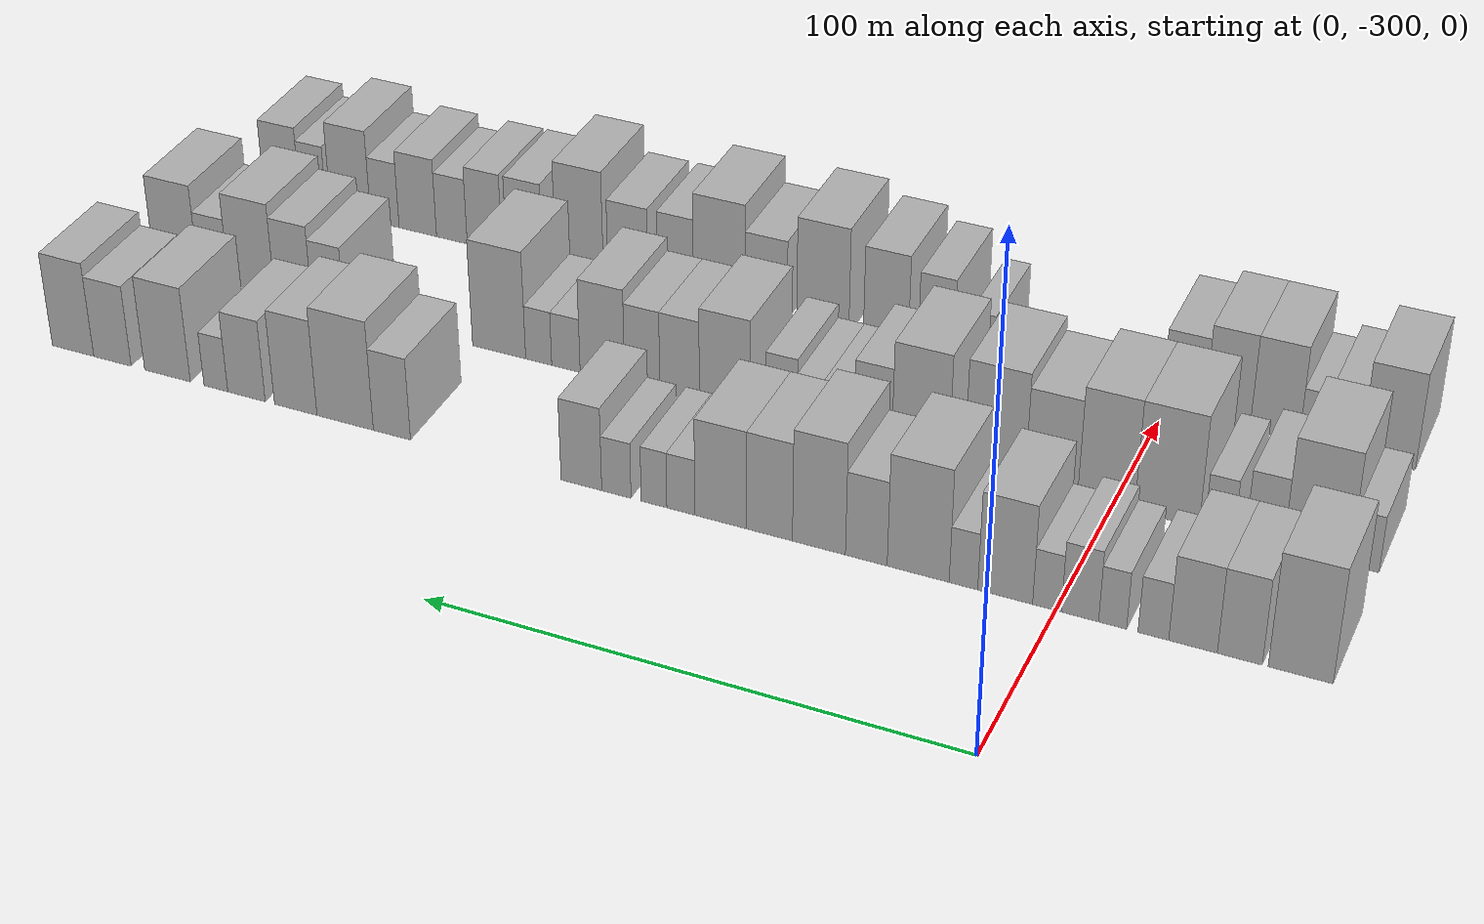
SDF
<sdf version="1.6">
 <world name="default">
  <model name="building_1">
   <static>1</static>
   <pose>50.0000 -342.4957 0 0.000000 0.000000 0.000000</pose>
   <link name="link">
    <pose>0 0 12.00 0 0 0</pose>
    <collision name="collision"><geometry><box><size>20.0000 11.0086 24.0000</size></box></geometry></collision>
    <visual name="visual">
     <cast_shadows>0</cast_shadows>
     <geometry><box><size>20.0000 11.0086 24.0000</size></box></geometry>
     <material>
      <script>
       <uri>model://HANNAS_wall/materials/scripts</uri>
       <uri>model://HANNAS_wall/materials/textures</uri>
       <name>vrc/HANNAS_wall</name>
      </script>
     </material>
    </visual>
   </link>
  </model>
  <model name="building_2">
   <static>1</static>
   <pose>50.0000 -332.1267 0 0.000000 0.000000 0.000000</pose>
   <link name="link">
    <pose>0 0 9.00 0 0 0</pose>
    <collision name="collision"><geometry><box><size>20.0000 7.7294 18.0000</size></box></geometry></collision>
    <visual name="visual">
     <cast_shadows>0</cast_shadows>
     <geometry><box><size>20.0000 7.7294 18.0000</size></box></geometry>
     <material>
      <script>
       <uri>model://HANNAS_wall/materials/scripts</uri>
       <uri>model://HANNAS_wall/materials/textures</uri>
       <name>vrc/HANNAS_wall</name>
      </script>
     </material>
    </visual>
   </link>
  </model>
  <model name="building_3">
   <static>1</static>
   <pose>50.0000 -324.0537 0 0.000000 0.000000 0.000000</pose>
   <link name="link">
    <pose>0 0 9.00 0 0 0</pose>
    <collision name="collision"><geometry><box><size>20.0000 8.4165 18.0000</size></box></geometry></collision>
    <visual name="visual">
     <cast_shadows>0</cast_shadows>
     <geometry><box><size>20.0000 8.4165 18.0000</size></box></geometry>
     <material>
      <script>
       <uri>model://HANNAS_wall/materials/scripts</uri>
       <uri>model://HANNAS_wall/materials/textures</uri>
       <name>vrc/HANNAS_wall</name>
      </script>
     </material>
    </visual>
   </link>
  </model>
  <model name="building_4">
   <static>1</static>
   <pose>50.0000 -317.1631 0 0.000000 0.000000 0.000000</pose>
   <link name="link">
    <pose>0 0 6.00 0 0 0</pose>
    <collision name="collision"><geometry><box><size>20.0000 5.3648 12.0000</size></box></geometry></collision>
    <visual name="visual">
     <cast_shadows>0</cast_shadows>
     <geometry><box><size>20.0000 5.3648 12.0000</size></box></geometry>
     <material>
      <script>
       <uri>model://HANNAS_wall/materials/scripts</uri>
       <uri>model://HANNAS_wall/materials/textures</uri>
       <name>vrc/HANNAS_wall</name>
      </script>
     </material>
    </visual>
   </link>
  </model>
  <model name="building_5">
   <static>1</static>
   <pose>50.0000 -310.0044 0 0.000000 0.000000 0.000000</pose>
   <link name="link">
    <pose>0 0 6.00 0 0 0</pose>
    <collision name="collision"><geometry><box><size>20.0000 4.9525 12.0000</size></box></geometry></collision>
    <visual name="visual">
     <cast_shadows>0</cast_shadows>
     <geometry><box><size>20.0000 4.9525 12.0000</size></box></geometry>
     <material>
      <script>
       <uri>model://HANNAS_wall/materials/scripts</uri>
       <uri>model://HANNAS_wall/materials/textures</uri>
       <name>vrc/HANNAS_wall</name>
      </script>
     </material>
    </visual>
   </link>
  </model>
  <model name="building_6">
   <static>1</static>
   <pose>50.0000 -304.2239 0 0.000000 0.000000 0.000000</pose>
   <link name="link">
    <pose>0 0 7.50 0 0 0</pose>
    <collision name="collision"><geometry><box><size>20.0000 6.6086 15.0000</size></box></geometry></collision>
    <visual name="visual">
     <cast_shadows>0</cast_shadows>
     <geometry><box><size>20.0000 6.6086 15.0000</size></box></geometry>
     <material>
      <script>
       <uri>model://HANNAS_wall/materials/scripts</uri>
       <uri>model://HANNAS_wall/materials/textures</uri>
       <name>vrc/HANNAS_wall</name>
      </script>
     </material>
    </visual>
   </link>
  </model>
  <model name="building_7">
   <static>1</static>
   <pose>50.0000 -298.3457 0 0.000000 0.000000 0.000000</pose>
   <link name="link">
    <pose>0 0 6.00 0 0 0</pose>
    <collision name="collision"><geometry><box><size>20.0000 5.1477 12.0000</size></box></geometry></collision>
    <visual name="visual">
     <cast_shadows>0</cast_shadows>
     <geometry><box><size>20.0000 5.1477 12.0000</size></box></geometry>
     <material>
      <script>
       <uri>model://HANNAS_wall/materials/scripts</uri>
       <uri>model://HANNAS_wall/materials/textures</uri>
       <name>vrc/HANNAS_wall</name>
      </script>
     </material>
    </visual>
   </link>
  </model>
  <model name="building_8">
   <static>1</static>
   <pose>50.0000 -290.8053 0 0.000000 0.000000 0.000000</pose>
   <link name="link">
    <pose>0 0 10.50 0 0 0</pose>
    <collision name="collision"><geometry><box><size>20.0000 9.9332 21.0000</size></box></geometry></collision>
    <visual name="visual">
     <cast_shadows>0</cast_shadows>
     <geometry><box><size>20.0000 9.9332 21.0000</size></box></geometry>
     <material>
      <script>
       <uri>model://HANNAS_wall/materials/scripts</uri>
       <uri>model://HANNAS_wall/materials/textures</uri>
       <name>vrc/HANNAS_wall</name>
      </script>
     </material>
    </visual>
   </link>
  </model>
  <model name="building_9">
   <static>1</static>
   <pose>50.0000 -283.2354 0 0.000000 0.000000 0.000000</pose>
   <link name="link">
    <pose>0 0 6.00 0 0 0</pose>
    <collision name="collision"><geometry><box><size>20.0000 5.2066 12.0000</size></box></geometry></collision>
    <visual name="visual">
     <cast_shadows>0</cast_shadows>
     <geometry><box><size>20.0000 5.2066 12.0000</size></box></geometry>
     <material>
      <script>
       <uri>model://HANNAS_wall/materials/scripts</uri>
       <uri>model://HANNAS_wall/materials/textures</uri>
       <name>vrc/HANNAS_wall</name>
      </script>
     </material>
    </visual>
   </link>
  </model>
  <model name="building_10">
   <static>1</static>
   <pose>50.0000 -274.9142 0 0.000000 0.000000 0.000000</pose>
   <link name="link">
    <pose>0 0 12.00 0 0 0</pose>
    <collision name="collision"><geometry><box><size>20.0000 11.4358 24.0000</size></box></geometry></collision>
    <visual name="visual">
     <cast_shadows>0</cast_shadows>
     <geometry><box><size>20.0000 11.4358 24.0000</size></box></geometry>
     <material>
      <script>
       <uri>model://HANNAS_wall/materials/scripts</uri>
       <uri>model://HANNAS_wall/materials/textures</uri>
       <name>vrc/HANNAS_wall</name>
      </script>
     </material>
    </visual>
   </link>
  </model>
  <model name="building_11">
   <static>1</static>
   <pose>50.0000 -265.3020 0 0.000000 0.000000 0.000000</pose>
   <link name="link">
    <pose>0 0 9.00 0 0 0</pose>
    <collision name="collision"><geometry><box><size>20.0000 7.7885 18.0000</size></box></geometry></collision>
    <visual name="visual">
     <cast_shadows>0</cast_shadows>
     <geometry><box><size>20.0000 7.7885 18.0000</size></box></geometry>
     <material>
      <script>
       <uri>model://HANNAS_wall/materials/scripts</uri>
       <uri>model://HANNAS_wall/materials/textures</uri>
       <name>vrc/HANNAS_wall</name>
      </script>
     </material>
    </visual>
   </link>
  </model>
  <model name="building_12">
   <static>1</static>
   <pose>50.0000 -256.4135 0 0.000000 0.000000 0.000000</pose>
   <link name="link">
    <pose>0 0 12.00 0 0 0</pose>
    <collision name="collision"><geometry><box><size>20.0000 9.9885 24.0000</size></box></geometry></collision>
    <visual name="visual">
     <cast_shadows>0</cast_shadows>
     <geometry><box><size>20.0000 9.9885 24.0000</size></box></geometry>
     <material>
      <script>
       <uri>model://HANNAS_wall/materials/scripts</uri>
       <uri>model://HANNAS_wall/materials/textures</uri>
       <name>vrc/HANNAS_wall</name>
      </script>
     </material>
    </visual>
   </link>
  </model>
  <model name="building_13">
   <static>1</static>
   <pose>50.0000 -247.0191 0 0.000000 0.000000 0.000000</pose>
   <link name="link">
    <pose>0 0 10.50 0 0 0</pose>
    <collision name="collision"><geometry><box><size>20.0000 8.8004 21.0000</size></box></geometry></collision>
    <visual name="visual">
     <cast_shadows>0</cast_shadows>
     <geometry><box><size>20.0000 8.8004 21.0000</size></box></geometry>
     <material>
      <script>
       <uri>model://HANNAS_wall/materials/scripts</uri>
       <uri>model://HANNAS_wall/materials/textures</uri>
       <name>vrc/HANNAS_wall</name>
      </script>
     </material>
    </visual>
   </link>
  </model>
  <model name="building_14">
   <static>1</static>
   <pose>50.0000 -237.6495 0 0.000000 0.000000 0.000000</pose>
   <link name="link">
    <pose>0 0 10.50 0 0 0</pose>
    <collision name="collision"><geometry><box><size>20.0000 9.9387 21.0000</size></box></geometry></collision>
    <visual name="visual">
     <cast_shadows>0</cast_shadows>
     <geometry><box><size>20.0000 9.9387 21.0000</size></box></geometry>
     <material>
      <script>
       <uri>model://HANNAS_wall/materials/scripts</uri>
       <uri>model://HANNAS_wall/materials/textures</uri>
       <name>vrc/HANNAS_wall</name>
      </script>
     </material>
    </visual>
   </link>
  </model>
  <model name="building_15">
   <static>1</static>
   <pose>50.0000 -229.9502 0 0.000000 0.000000 0.000000</pose>
   <link name="link">
    <pose>0 0 6.00 0 0 0</pose>
    <collision name="collision"><geometry><box><size>20.0000 5.4601 12.0000</size></box></geometry></collision>
    <visual name="visual">
     <cast_shadows>0</cast_shadows>
     <geometry><box><size>20.0000 5.4601 12.0000</size></box></geometry>
     <material>
      <script>
       <uri>model://HANNAS_wall/materials/scripts</uri>
       <uri>model://HANNAS_wall/materials/textures</uri>
       <name>vrc/HANNAS_wall</name>
      </script>
     </material>
    </visual>
   </link>
  </model>
  <model name="building_16">
   <static>1</static>
   <pose>50.0000 -224.7067 0 0.000000 0.000000 0.000000</pose>
   <link name="link">
    <pose>0 0 6.00 0 0 0</pose>
    <collision name="collision"><geometry><box><size>20.0000 5.0269 12.0000</size></box></geometry></collision>
    <visual name="visual">
     <cast_shadows>0</cast_shadows>
     <geometry><box><size>20.0000 5.0269 12.0000</size></box></geometry>
     <material>
      <script>
       <uri>model://HANNAS_wall/materials/scripts</uri>
       <uri>model://HANNAS_wall/materials/textures</uri>
       <name>vrc/HANNAS_wall</name>
      </script>
     </material>
    </visual>
   </link>
  </model>
  <model name="building_17">
   <static>1</static>
   <pose>50.0000 -217.2980 0 0.000000 0.000000 0.000000</pose>
   <link name="link">
    <pose>0 0 6.00 0 0 0</pose>
    <collision name="collision"><geometry><box><size>20.0000 5.7905 12.0000</size></box></geometry></collision>
    <visual name="visual">
     <cast_shadows>0</cast_shadows>
     <geometry><box><size>20.0000 5.7905 12.0000</size></box></geometry>
     <material>
      <script>
       <uri>model://HANNAS_wall/materials/scripts</uri>
       <uri>model://HANNAS_wall/materials/textures</uri>
       <name>vrc/HANNAS_wall</name>
      </script>
     </material>
    </visual>
   </link>
  </model>
  <model name="building_18">
   <static>1</static>
   <pose>50.0000 -210.3481 0 0.000000 0.000000 0.000000</pose>
   <link name="link">
    <pose>0 0 9.00 0 0 0</pose>
    <collision name="collision"><geometry><box><size>20.0000 8.1093 18.0000</size></box></geometry></collision>
    <visual name="visual">
     <cast_shadows>0</cast_shadows>
     <geometry><box><size>20.0000 8.1093 18.0000</size></box></geometry>
     <material>
      <script>
       <uri>model://HANNAS_wall/materials/scripts</uri>
       <uri>model://HANNAS_wall/materials/textures</uri>
       <name>vrc/HANNAS_wall</name>
      </script>
     </material>
    </visual>
   </link>
  </model>
  <model name="building_19">
   <static>1</static>
   <pose>50.0000 -171.6649 0 0.000000 0.000000 0.000000</pose>
   <link name="link">
    <pose>0 0 9.00 0 0 0</pose>
    <collision name="collision"><geometry><box><size>20.0000 7.7523 18.0000</size></box></geometry></collision>
    <visual name="visual">
     <cast_shadows>0</cast_shadows>
     <geometry><box><size>20.0000 7.7523 18.0000</size></box></geometry>
     <material>
      <script>
       <uri>model://HANNAS_wall/materials/scripts</uri>
       <uri>model://HANNAS_wall/materials/textures</uri>
       <name>vrc/HANNAS_wall</name>
      </script>
     </material>
    </visual>
   </link>
  </model>
  <model name="building_20">
   <static>1</static>
   <pose>50.0000 -161.8303 0 0.000000 0.000000 0.000000</pose>
   <link name="link">
    <pose>0 0 12.00 0 0 0</pose>
    <collision name="collision"><geometry><box><size>20.0000 11.9169 24.0000</size></box></geometry></collision>
    <visual name="visual">
     <cast_shadows>0</cast_shadows>
     <geometry><box><size>20.0000 11.9169 24.0000</size></box></geometry>
     <material>
      <script>
       <uri>model://HANNAS_wall/materials/scripts</uri>
       <uri>model://HANNAS_wall/materials/textures</uri>
       <name>vrc/HANNAS_wall</name>
      </script>
     </material>
    </visual>
   </link>
  </model>
  <model name="building_21">
   <static>1</static>
   <pose>50.0000 -151.3336 0 0.000000 0.000000 0.000000</pose>
   <link name="link">
    <pose>0 0 10.50 0 0 0</pose>
    <collision name="collision"><geometry><box><size>20.0000 9.0767 21.0000</size></box></geometry></collision>
    <visual name="visual">
     <cast_shadows>0</cast_shadows>
     <geometry><box><size>20.0000 9.0767 21.0000</size></box></geometry>
     <material>
      <script>
       <uri>model://HANNAS_wall/materials/scripts</uri>
       <uri>model://HANNAS_wall/materials/textures</uri>
       <name>vrc/HANNAS_wall</name>
      </script>
     </material>
    </visual>
   </link>
  </model>
  <model name="building_22">
   <static>1</static>
   <pose>50.0000 -140.7444 0 0.000000 0.000000 0.000000</pose>
   <link name="link">
    <pose>0 0 9.00 0 0 0</pose>
    <collision name="collision"><geometry><box><size>20.0000 8.1017 18.0000</size></box></geometry></collision>
    <visual name="visual">
     <cast_shadows>0</cast_shadows>
     <geometry><box><size>20.0000 8.1017 18.0000</size></box></geometry>
     <material>
      <script>
       <uri>model://HANNAS_wall/materials/scripts</uri>
       <uri>model://HANNAS_wall/materials/textures</uri>
       <name>vrc/HANNAS_wall</name>
      </script>
     </material>
    </visual>
   </link>
  </model>
  <model name="building_23">
   <static>1</static>
   <pose>50.0000 -134.0986 0 0.000000 0.000000 0.000000</pose>
   <link name="link">
    <pose>0 0 6.00 0 0 0</pose>
    <collision name="collision"><geometry><box><size>20.0000 5.1899 12.0000</size></box></geometry></collision>
    <visual name="visual">
     <cast_shadows>0</cast_shadows>
     <geometry><box><size>20.0000 5.1899 12.0000</size></box></geometry>
     <material>
      <script>
       <uri>model://HANNAS_wall/materials/scripts</uri>
       <uri>model://HANNAS_wall/materials/textures</uri>
       <name>vrc/HANNAS_wall</name>
      </script>
     </material>
    </visual>
   </link>
  </model>
  <model name="building_24">
   <static>1</static>
   <pose>50.0000 -123.4627 0 0.000000 0.000000 0.000000</pose>
   <link name="link">
    <pose>0 0 10.50 0 0 0</pose>
    <collision name="collision"><geometry><box><size>20.0000 10.0819 21.0000</size></box></geometry></collision>
    <visual name="visual">
     <cast_shadows>0</cast_shadows>
     <geometry><box><size>20.0000 10.0819 21.0000</size></box></geometry>
     <material>
      <script>
       <uri>model://HANNAS_wall/materials/scripts</uri>
       <uri>model://HANNAS_wall/materials/textures</uri>
       <name>vrc/HANNAS_wall</name>
      </script>
     </material>
    </visual>
   </link>
  </model>
  <model name="building_25">
   <static>1</static>
   <pose>50.0000 -111.2321 0 0.000000 0.000000 0.000000</pose>
   <link name="link">
    <pose>0 0 9.00 0 0 0</pose>
    <collision name="collision"><geometry><box><size>20.0000 8.3793 18.0000</size></box></geometry></collision>
    <visual name="visual">
     <cast_shadows>0</cast_shadows>
     <geometry><box><size>20.0000 8.3793 18.0000</size></box></geometry>
     <material>
      <script>
       <uri>model://HANNAS_wall/materials/scripts</uri>
       <uri>model://HANNAS_wall/materials/textures</uri>
       <name>vrc/HANNAS_wall</name>
      </script>
     </material>
    </visual>
   </link>
  </model>
  <model name="building_26">
   <static>1</static>
   <pose>50.0000 -102.3749 0 0.000000 0.000000 0.000000</pose>
   <link name="link">
    <pose>0 0 10.50 0 0 0</pose>
    <collision name="collision"><geometry><box><size>20.0000 9.3350 21.0000</size></box></geometry></collision>
    <visual name="visual">
     <cast_shadows>0</cast_shadows>
     <geometry><box><size>20.0000 9.3350 21.0000</size></box></geometry>
     <material>
      <script>
       <uri>model://HANNAS_wall/materials/scripts</uri>
       <uri>model://HANNAS_wall/materials/textures</uri>
       <name>vrc/HANNAS_wall</name>
      </script>
     </material>
    </visual>
   </link>
  </model>
  <model name="building_74">
   <static>1</static>
   <pose>82.0000 -345.4135 0 0.000000 0.000000 0.000000</pose>
   <link name="link">
    <pose>0 0 6.00 0 0 0</pose>
    <collision name="collision"><geometry><box><size>20.0000 5.1729 12.0000</size></box></geometry></collision>
    <visual name="visual">
     <cast_shadows>0</cast_shadows>
     <geometry><box><size>20.0000 5.1729 12.0000</size></box></geometry>
     <material>
      <script>
       <uri>model://HANNAS_wall/materials/scripts</uri>
       <uri>model://HANNAS_wall/materials/textures</uri>
       <name>vrc/HANNAS_wall</name>
      </script>
     </material>
    </visual>
   </link>
  </model>
  <model name="building_75">
   <static>1</static>
   <pose>82.0000 -336.9484 0 0.000000 0.000000 0.000000</pose>
   <link name="link">
    <pose>0 0 12.00 0 0 0</pose>
    <collision name="collision"><geometry><box><size>20.0000 11.7573 24.0000</size></box></geometry></collision>
    <visual name="visual">
     <cast_shadows>0</cast_shadows>
     <geometry><box><size>20.0000 11.7573 24.0000</size></box></geometry>
     <material>
      <script>
       <uri>model://HANNAS_wall/materials/scripts</uri>
       <uri>model://HANNAS_wall/materials/textures</uri>
       <name>vrc/HANNAS_wall</name>
      </script>
     </material>
    </visual>
   </link>
  </model>
  <model name="building_76">
   <static>1</static>
   <pose>82.0000 -327.6473 0 0.000000 0.000000 0.000000</pose>
   <link name="link">
    <pose>0 0 7.50 0 0 0</pose>
    <collision name="collision"><geometry><box><size>20.0000 6.8450 15.0000</size></box></geometry></collision>
    <visual name="visual">
     <cast_shadows>0</cast_shadows>
     <geometry><box><size>20.0000 6.8450 15.0000</size></box></geometry>
     <material>
      <script>
       <uri>model://HANNAS_wall/materials/scripts</uri>
       <uri>model://HANNAS_wall/materials/textures</uri>
       <name>vrc/HANNAS_wall</name>
      </script>
     </material>
    </visual>
   </link>
  </model>
  <model name="building_77">
   <static>1</static>
   <pose>82.0000 -319.5282 0 0.000000 0.000000 0.000000</pose>
   <link name="link">
    <pose>0 0 6.00 0 0 0</pose>
    <collision name="collision"><geometry><box><size>20.0000 5.3932 12.0000</size></box></geometry></collision>
    <visual name="visual">
     <cast_shadows>0</cast_shadows>
     <geometry><box><size>20.0000 5.3932 12.0000</size></box></geometry>
     <material>
      <script>
       <uri>model://HANNAS_wall/materials/scripts</uri>
       <uri>model://HANNAS_wall/materials/textures</uri>
       <name>vrc/HANNAS_wall</name>
      </script>
     </material>
    </visual>
   </link>
  </model>
  <model name="building_78">
   <static>1</static>
   <pose>82.0000 -309.8970 0 0.000000 0.000000 0.000000</pose>
   <link name="link">
    <pose>0 0 12.00 0 0 0</pose>
    <collision name="collision"><geometry><box><size>20.0000 11.8692 24.0000</size></box></geometry></collision>
    <visual name="visual">
     <cast_shadows>0</cast_shadows>
     <geometry><box><size>20.0000 11.8692 24.0000</size></box></geometry>
     <material>
      <script>
       <uri>model://HANNAS_wall/materials/scripts</uri>
       <uri>model://HANNAS_wall/materials/textures</uri>
       <name>vrc/HANNAS_wall</name>
      </script>
     </material>
    </visual>
   </link>
  </model>
  <model name="building_79">
   <static>1</static>
   <pose>82.0000 -298.6651 0 0.000000 0.000000 0.000000</pose>
   <link name="link">
    <pose>0 0 12.00 0 0 0</pose>
    <collision name="collision"><geometry><box><size>20.0000 10.5946 24.0000</size></box></geometry></collision>
    <visual name="visual">
     <cast_shadows>0</cast_shadows>
     <geometry><box><size>20.0000 10.5946 24.0000</size></box></geometry>
     <material>
      <script>
       <uri>model://HANNAS_wall/materials/scripts</uri>
       <uri>model://HANNAS_wall/materials/textures</uri>
       <name>vrc/HANNAS_wall</name>
      </script>
     </material>
    </visual>
   </link>
  </model>
  <model name="building_80">
   <static>1</static>
   <pose>82.0000 -288.4018 0 0.000000 0.000000 0.000000</pose>
   <link name="link">
    <pose>0 0 10.50 0 0 0</pose>
    <collision name="collision"><geometry><box><size>20.0000 9.9319 21.0000</size></box></geometry></collision>
    <visual name="visual">
     <cast_shadows>0</cast_shadows>
     <geometry><box><size>20.0000 9.9319 21.0000</size></box></geometry>
     <material>
      <script>
       <uri>model://HANNAS_wall/materials/scripts</uri>
       <uri>model://HANNAS_wall/materials/textures</uri>
       <name>vrc/HANNAS_wall</name>
      </script>
     </material>
    </visual>
   </link>
  </model>
  <model name="building_81">
   <static>1</static>
   <pose>82.0000 -277.6458 0 0.000000 0.000000 0.000000</pose>
   <link name="link">
    <pose>0 0 12.00 0 0 0</pose>
    <collision name="collision"><geometry><box><size>20.0000 11.5801 24.0000</size></box></geometry></collision>
    <visual name="visual">
     <cast_shadows>0</cast_shadows>
     <geometry><box><size>20.0000 11.5801 24.0000</size></box></geometry>
     <material>
      <script>
       <uri>model://HANNAS_wall/materials/scripts</uri>
       <uri>model://HANNAS_wall/materials/textures</uri>
       <name>vrc/HANNAS_wall</name>
      </script>
     </material>
    </visual>
   </link>
  </model>
  <model name="building_82">
   <static>1</static>
   <pose>82.0000 -263.3040 0 0.000000 0.000000 0.000000</pose>
   <link name="link">
    <pose>0 0 12.00 0 0 0</pose>
    <collision name="collision"><geometry><box><size>20.0000 11.1036 24.0000</size></box></geometry></collision>
    <visual name="visual">
     <cast_shadows>0</cast_shadows>
     <geometry><box><size>20.0000 11.1036 24.0000</size></box></geometry>
     <material>
      <script>
       <uri>model://HANNAS_wall/materials/scripts</uri>
       <uri>model://HANNAS_wall/materials/textures</uri>
       <name>vrc/HANNAS_wall</name>
      </script>
     </material>
    </visual>
   </link>
  </model>
  <model name="building_83">
   <static>1</static>
   <pose>82.0000 -254.0341 0 0.000000 0.000000 0.000000</pose>
   <link name="link">
    <pose>0 0 9.00 0 0 0</pose>
    <collision name="collision"><geometry><box><size>20.0000 7.4361 18.0000</size></box></geometry></collision>
    <visual name="visual">
     <cast_shadows>0</cast_shadows>
     <geometry><box><size>20.0000 7.4361 18.0000</size></box></geometry>
     <material>
      <script>
       <uri>model://HANNAS_wall/materials/scripts</uri>
       <uri>model://HANNAS_wall/materials/textures</uri>
       <name>vrc/HANNAS_wall</name>
      </script>
     </material>
    </visual>
   </link>
  </model>
  <model name="building_84">
   <static>1</static>
   <pose>82.0000 -247.3696 0 0.000000 0.000000 0.000000</pose>
   <link name="link">
    <pose>0 0 6.00 0 0 0</pose>
    <collision name="collision"><geometry><box><size>20.0000 5.8930 12.0000</size></box></geometry></collision>
    <visual name="visual">
     <cast_shadows>0</cast_shadows>
     <geometry><box><size>20.0000 5.8930 12.0000</size></box></geometry>
     <material>
      <script>
       <uri>model://HANNAS_wall/materials/scripts</uri>
       <uri>model://HANNAS_wall/materials/textures</uri>
       <name>vrc/HANNAS_wall</name>
      </script>
     </material>
    </visual>
   </link>
  </model>
  <model name="building_85">
   <static>1</static>
   <pose>82.0000 -241.7701 0 0.000000 0.000000 0.000000</pose>
   <link name="link">
    <pose>0 0 6.00 0 0 0</pose>
    <collision name="collision"><geometry><box><size>20.0000 5.3059 12.0000</size></box></geometry></collision>
    <visual name="visual">
     <cast_shadows>0</cast_shadows>
     <geometry><box><size>20.0000 5.3059 12.0000</size></box></geometry>
     <material>
      <script>
       <uri>model://HANNAS_wall/materials/scripts</uri>
       <uri>model://HANNAS_wall/materials/textures</uri>
       <name>vrc/HANNAS_wall</name>
      </script>
     </material>
    </visual>
   </link>
  </model>
  <model name="building_86">
   <static>1</static>
   <pose>82.0000 -235.9255 0 0.000000 0.000000 0.000000</pose>
   <link name="link">
    <pose>0 0 7.50 0 0 0</pose>
    <collision name="collision"><geometry><box><size>20.0000 6.3835 15.0000</size></box></geometry></collision>
    <visual name="visual">
     <cast_shadows>0</cast_shadows>
     <geometry><box><size>20.0000 6.3835 15.0000</size></box></geometry>
     <material>
      <script>
       <uri>model://HANNAS_wall/materials/scripts</uri>
       <uri>model://HANNAS_wall/materials/textures</uri>
       <name>vrc/HANNAS_wall</name>
      </script>
     </material>
    </visual>
   </link>
  </model>
  <model name="building_87">
   <static>1</static>
   <pose>82.0000 -224.5570 0 0.000000 0.000000 0.000000</pose>
   <link name="link">
    <pose>0 0 10.50 0 0 0</pose>
    <collision name="collision"><geometry><box><size>20.0000 10.3534 21.0000</size></box></geometry></collision>
    <visual name="visual">
     <cast_shadows>0</cast_shadows>
     <geometry><box><size>20.0000 10.3534 21.0000</size></box></geometry>
     <material>
      <script>
       <uri>model://HANNAS_wall/materials/scripts</uri>
       <uri>model://HANNAS_wall/materials/textures</uri>
       <name>vrc/HANNAS_wall</name>
      </script>
     </material>
    </visual>
   </link>
  </model>
  <model name="building_88">
   <static>1</static>
   <pose>82.0000 -215.3224 0 0.000000 0.000000 0.000000</pose>
   <link name="link">
    <pose>0 0 9.00 0 0 0</pose>
    <collision name="collision"><geometry><box><size>20.0000 8.1158 18.0000</size></box></geometry></collision>
    <visual name="visual">
     <cast_shadows>0</cast_shadows>
     <geometry><box><size>20.0000 8.1158 18.0000</size></box></geometry>
     <material>
      <script>
       <uri>model://HANNAS_wall/materials/scripts</uri>
       <uri>model://HANNAS_wall/materials/textures</uri>
       <name>vrc/HANNAS_wall</name>
      </script>
     </material>
    </visual>
   </link>
  </model>
  <model name="building_89">
   <static>1</static>
   <pose>82.0000 -207.6237 0 0.000000 0.000000 0.000000</pose>
   <link name="link">
    <pose>0 0 9.00 0 0 0</pose>
    <collision name="collision"><geometry><box><size>20.0000 7.2817 18.0000</size></box></geometry></collision>
    <visual name="visual">
     <cast_shadows>0</cast_shadows>
     <geometry><box><size>20.0000 7.2817 18.0000</size></box></geometry>
     <material>
      <script>
       <uri>model://HANNAS_wall/materials/scripts</uri>
       <uri>model://HANNAS_wall/materials/textures</uri>
       <name>vrc/HANNAS_wall</name>
      </script>
     </material>
    </visual>
   </link>
  </model>
  <model name="building_90">
   <static>1</static>
   <pose>82.0000 -199.3154 0 0.000000 0.000000 0.000000</pose>
   <link name="link">
    <pose>0 0 10.50 0 0 0</pose>
    <collision name="collision"><geometry><box><size>20.0000 9.3349 21.0000</size></box></geometry></collision>
    <visual name="visual">
     <cast_shadows>0</cast_shadows>
     <geometry><box><size>20.0000 9.3349 21.0000</size></box></geometry>
     <material>
      <script>
       <uri>model://HANNAS_wall/materials/scripts</uri>
       <uri>model://HANNAS_wall/materials/textures</uri>
       <name>vrc/HANNAS_wall</name>
      </script>
     </material>
    </visual>
   </link>
  </model>
  <model name="building_91">
   <static>1</static>
   <pose>82.0000 -191.6496 0 0.000000 0.000000 0.000000</pose>
   <link name="link">
    <pose>0 0 6.00 0 0 0</pose>
    <collision name="collision"><geometry><box><size>20.0000 5.9967 12.0000</size></box></geometry></collision>
    <visual name="visual">
     <cast_shadows>0</cast_shadows>
     <geometry><box><size>20.0000 5.9967 12.0000</size></box></geometry>
     <material>
      <script>
       <uri>model://HANNAS_wall/materials/scripts</uri>
       <uri>model://HANNAS_wall/materials/textures</uri>
       <name>vrc/HANNAS_wall</name>
      </script>
     </material>
    </visual>
   </link>
  </model>
  <model name="building_92">
   <static>1</static>
   <pose>82.0000 -185.8850 0 0.000000 0.000000 0.000000</pose>
   <link name="link">
    <pose>0 0 6.00 0 0 0</pose>
    <collision name="collision"><geometry><box><size>20.0000 5.5325 12.0000</size></box></geometry></collision>
    <visual name="visual">
     <cast_shadows>0</cast_shadows>
     <geometry><box><size>20.0000 5.5325 12.0000</size></box></geometry>
     <material>
      <script>
       <uri>model://HANNAS_wall/materials/scripts</uri>
       <uri>model://HANNAS_wall/materials/textures</uri>
       <name>vrc/HANNAS_wall</name>
      </script>
     </material>
    </visual>
   </link>
  </model>
  <model name="building_93">
   <static>1</static>
   <pose>82.0000 -177.4417 0 0.000000 0.000000 0.000000</pose>
   <link name="link">
    <pose>0 0 12.00 0 0 0</pose>
    <collision name="collision"><geometry><box><size>20.0000 11.3540 24.0000</size></box></geometry></collision>
    <visual name="visual">
     <cast_shadows>0</cast_shadows>
     <geometry><box><size>20.0000 11.3540 24.0000</size></box></geometry>
     <material>
      <script>
       <uri>model://HANNAS_wall/materials/scripts</uri>
       <uri>model://HANNAS_wall/materials/textures</uri>
       <name>vrc/HANNAS_wall</name>
      </script>
     </material>
    </visual>
   </link>
  </model>
  <model name="building_94">
   <static>1</static>
   <pose>82.0000 -140.0112 0 0.000000 0.000000 0.000000</pose>
   <link name="link">
    <pose>0 0 7.50 0 0 0</pose>
    <collision name="collision"><geometry><box><size>20.0000 7.1690 15.0000</size></box></geometry></collision>
    <visual name="visual">
     <cast_shadows>0</cast_shadows>
     <geometry><box><size>20.0000 7.1690 15.0000</size></box></geometry>
     <material>
      <script>
       <uri>model://HANNAS_wall/materials/scripts</uri>
       <uri>model://HANNAS_wall/materials/textures</uri>
       <name>vrc/HANNAS_wall</name>
      </script>
     </material>
    </visual>
   </link>
  </model>
  <model name="building_95">
   <static>1</static>
   <pose>82.0000 -132.2304 0 0.000000 0.000000 0.000000</pose>
   <link name="link">
    <pose>0 0 9.00 0 0 0</pose>
    <collision name="collision"><geometry><box><size>20.0000 8.3927 18.0000</size></box></geometry></collision>
    <visual name="visual">
     <cast_shadows>0</cast_shadows>
     <geometry><box><size>20.0000 8.3927 18.0000</size></box></geometry>
     <material>
      <script>
       <uri>model://HANNAS_wall/materials/scripts</uri>
       <uri>model://HANNAS_wall/materials/textures</uri>
       <name>vrc/HANNAS_wall</name>
      </script>
     </material>
    </visual>
   </link>
  </model>
  <model name="building_96">
   <static>1</static>
   <pose>82.0000 -122.8331 0 0.000000 0.000000 0.000000</pose>
   <link name="link">
    <pose>0 0 10.50 0 0 0</pose>
    <collision name="collision"><geometry><box><size>20.0000 10.4019 21.0000</size></box></geometry></collision>
    <visual name="visual">
     <cast_shadows>0</cast_shadows>
     <geometry><box><size>20.0000 10.4019 21.0000</size></box></geometry>
     <material>
      <script>
       <uri>model://HANNAS_wall/materials/scripts</uri>
       <uri>model://HANNAS_wall/materials/textures</uri>
       <name>vrc/HANNAS_wall</name>
      </script>
     </material>
    </visual>
   </link>
  </model>
  <model name="building_97">
   <static>1</static>
   <pose>82.0000 -114.1288 0 0.000000 0.000000 0.000000</pose>
   <link name="link">
    <pose>0 0 7.50 0 0 0</pose>
    <collision name="collision"><geometry><box><size>20.0000 7.0066 15.0000</size></box></geometry></collision>
    <visual name="visual">
     <cast_shadows>0</cast_shadows>
     <geometry><box><size>20.0000 7.0066 15.0000</size></box></geometry>
     <material>
      <script>
       <uri>model://HANNAS_wall/materials/scripts</uri>
       <uri>model://HANNAS_wall/materials/textures</uri>
       <name>vrc/HANNAS_wall</name>
      </script>
     </material>
    </visual>
   </link>
  </model>
  <model name="building_98">
   <static>1</static>
   <pose>82.0000 -105.5095 0 0.000000 0.000000 0.000000</pose>
   <link name="link">
    <pose>0 0 10.50 0 0 0</pose>
    <collision name="collision"><geometry><box><size>20.0000 10.2322 21.0000</size></box></geometry></collision>
    <visual name="visual">
     <cast_shadows>0</cast_shadows>
     <geometry><box><size>20.0000 10.2322 21.0000</size></box></geometry>
     <material>
      <script>
       <uri>model://HANNAS_wall/materials/scripts</uri>
       <uri>model://HANNAS_wall/materials/textures</uri>
       <name>vrc/HANNAS_wall</name>
      </script>
     </material>
    </visual>
   </link>
  </model>
  <model name="building_149">
   <static>1</static>
   <pose>114.0000 -341.9334 0 0.000000 0.000000 0.000000</pose>
   <link name="link">
    <pose>0 0 10.50 0 0 0</pose>
    <collision name="collision"><geometry><box><size>20.0000 10.1333 21.0000</size></box></geometry></collision>
    <visual name="visual">
     <cast_shadows>0</cast_shadows>
     <geometry><box><size>20.0000 10.1333 21.0000</size></box></geometry>
     <material>
      <script>
       <uri>model://HANNAS_wall/materials/scripts</uri>
       <uri>model://HANNAS_wall/materials/textures</uri>
       <name>vrc/HANNAS_wall</name>
      </script>
     </material>
    </visual>
   </link>
  </model>
  <model name="building_150">
   <static>1</static>
   <pose>114.0000 -333.7881 0 0.000000 0.000000 0.000000</pose>
   <link name="link">
    <pose>0 0 7.50 0 0 0</pose>
    <collision name="collision"><geometry><box><size>20.0000 6.1573 15.0000</size></box></geometry></collision>
    <visual name="visual">
     <cast_shadows>0</cast_shadows>
     <geometry><box><size>20.0000 6.1573 15.0000</size></box></geometry>
     <material>
      <script>
       <uri>model://HANNAS_wall/materials/scripts</uri>
       <uri>model://HANNAS_wall/materials/textures</uri>
       <name>vrc/HANNAS_wall</name>
      </script>
     </material>
    </visual>
   </link>
  </model>
  <model name="building_151">
   <static>1</static>
   <pose>114.0000 -328.0776 0 0.000000 0.000000 0.000000</pose>
   <link name="link">
    <pose>0 0 6.00 0 0 0</pose>
    <collision name="collision"><geometry><box><size>20.0000 5.2637 12.0000</size></box></geometry></collision>
    <visual name="visual">
     <cast_shadows>0</cast_shadows>
     <geometry><box><size>20.0000 5.2637 12.0000</size></box></geometry>
     <material>
      <script>
       <uri>model://HANNAS_wall/materials/scripts</uri>
       <uri>model://HANNAS_wall/materials/textures</uri>
       <name>vrc/HANNAS_wall</name>
      </script>
     </material>
    </visual>
   </link>
  </model>
  <model name="building_152">
   <static>1</static>
   <pose>114.0000 -320.8091 0 0.000000 0.000000 0.000000</pose>
   <link name="link">
    <pose>0 0 10.50 0 0 0</pose>
    <collision name="collision"><geometry><box><size>20.0000 9.2734 21.0000</size></box></geometry></collision>
    <visual name="visual">
     <cast_shadows>0</cast_shadows>
     <geometry><box><size>20.0000 9.2734 21.0000</size></box></geometry>
     <material>
      <script>
       <uri>model://HANNAS_wall/materials/scripts</uri>
       <uri>model://HANNAS_wall/materials/textures</uri>
       <name>vrc/HANNAS_wall</name>
      </script>
     </material>
    </visual>
   </link>
  </model>
  <model name="building_153">
   <static>1</static>
   <pose>114.0000 -311.8167 0 0.000000 0.000000 0.000000</pose>
   <link name="link">
    <pose>0 0 10.50 0 0 0</pose>
    <collision name="collision"><geometry><box><size>20.0000 8.7114 21.0000</size></box></geometry></collision>
    <visual name="visual">
     <cast_shadows>0</cast_shadows>
     <geometry><box><size>20.0000 8.7114 21.0000</size></box></geometry>
     <material>
      <script>
       <uri>model://HANNAS_wall/materials/scripts</uri>
       <uri>model://HANNAS_wall/materials/textures</uri>
       <name>vrc/HANNAS_wall</name>
      </script>
     </material>
    </visual>
   </link>
  </model>
  <model name="building_154">
   <static>1</static>
   <pose>114.0000 -303.3777 0 0.000000 0.000000 0.000000</pose>
   <link name="link">
    <pose>0 0 9.00 0 0 0</pose>
    <collision name="collision"><geometry><box><size>20.0000 8.1667 18.0000</size></box></geometry></collision>
    <visual name="visual">
     <cast_shadows>0</cast_shadows>
     <geometry><box><size>20.0000 8.1667 18.0000</size></box></geometry>
     <material>
      <script>
       <uri>model://HANNAS_wall/materials/scripts</uri>
       <uri>model://HANNAS_wall/materials/textures</uri>
       <name>vrc/HANNAS_wall</name>
      </script>
     </material>
    </visual>
   </link>
  </model>
  <model name="building_155">
   <static>1</static>
   <pose>114.0000 -263.7118 0 0.000000 0.000000 0.000000</pose>
   <link name="link">
    <pose>0 0 6.00 0 0 0</pose>
    <collision name="collision"><geometry><box><size>20.0000 5.0550 12.0000</size></box></geometry></collision>
    <visual name="visual">
     <cast_shadows>0</cast_shadows>
     <geometry><box><size>20.0000 5.0550 12.0000</size></box></geometry>
     <material>
      <script>
       <uri>model://HANNAS_wall/materials/scripts</uri>
       <uri>model://HANNAS_wall/materials/textures</uri>
       <name>vrc/HANNAS_wall</name>
      </script>
     </material>
    </visual>
   </link>
  </model>
  <model name="building_156">
   <static>1</static>
   <pose>114.0000 -254.5454 0 0.000000 0.000000 0.000000</pose>
   <link name="link">
    <pose>0 0 9.00 0 0 0</pose>
    <collision name="collision"><geometry><box><size>20.0000 7.2779 18.0000</size></box></geometry></collision>
    <visual name="visual">
     <cast_shadows>0</cast_shadows>
     <geometry><box><size>20.0000 7.2779 18.0000</size></box></geometry>
     <material>
      <script>
       <uri>model://HANNAS_wall/materials/scripts</uri>
       <uri>model://HANNAS_wall/materials/textures</uri>
       <name>vrc/HANNAS_wall</name>
      </script>
     </material>
    </visual>
   </link>
  </model>
  <model name="building_157">
   <static>1</static>
   <pose>114.0000 -244.2988 0 0.000000 0.000000 0.000000</pose>
   <link name="link">
    <pose>0 0 10.50 0 0 0</pose>
    <collision name="collision"><geometry><box><size>20.0000 9.2153 21.0000</size></box></geometry></collision>
    <visual name="visual">
     <cast_shadows>0</cast_shadows>
     <geometry><box><size>20.0000 9.2153 21.0000</size></box></geometry>
     <material>
      <script>
       <uri>model://HANNAS_wall/materials/scripts</uri>
       <uri>model://HANNAS_wall/materials/textures</uri>
       <name>vrc/HANNAS_wall</name>
      </script>
     </material>
    </visual>
   </link>
  </model>
  <model name="building_158">
   <static>1</static>
   <pose>114.0000 -231.2459 0 0.000000 0.000000 0.000000</pose>
   <link name="link">
    <pose>0 0 12.00 0 0 0</pose>
    <collision name="collision"><geometry><box><size>20.0000 10.8904 24.0000</size></box></geometry></collision>
    <visual name="visual">
     <cast_shadows>0</cast_shadows>
     <geometry><box><size>20.0000 10.8904 24.0000</size></box></geometry>
     <material>
      <script>
       <uri>model://HANNAS_wall/materials/scripts</uri>
       <uri>model://HANNAS_wall/materials/textures</uri>
       <name>vrc/HANNAS_wall</name>
      </script>
     </material>
    </visual>
   </link>
  </model>
  <model name="building_159">
   <static>1</static>
   <pose>114.0000 -219.3707 0 0.000000 0.000000 0.000000</pose>
   <link name="link">
    <pose>0 0 9.00 0 0 0</pose>
    <collision name="collision"><geometry><box><size>20.0000 8.8600 18.0000</size></box></geometry></collision>
    <visual name="visual">
     <cast_shadows>0</cast_shadows>
     <geometry><box><size>20.0000 8.8600 18.0000</size></box></geometry>
     <material>
      <script>
       <uri>model://HANNAS_wall/materials/scripts</uri>
       <uri>model://HANNAS_wall/materials/textures</uri>
       <name>vrc/HANNAS_wall</name>
      </script>
     </material>
    </visual>
   </link>
  </model>
  <model name="building_160">
   <static>1</static>
   <pose>114.0000 -209.3960 0 0.000000 0.000000 0.000000</pose>
   <link name="link">
    <pose>0 0 12.00 0 0 0</pose>
    <collision name="collision"><geometry><box><size>20.0000 11.0894 24.0000</size></box></geometry></collision>
    <visual name="visual">
     <cast_shadows>0</cast_shadows>
     <geometry><box><size>20.0000 11.0894 24.0000</size></box></geometry>
     <material>
      <script>
       <uri>model://HANNAS_wall/materials/scripts</uri>
       <uri>model://HANNAS_wall/materials/textures</uri>
       <name>vrc/HANNAS_wall</name>
      </script>
     </material>
    </visual>
   </link>
  </model>
  <model name="building_161">
   <static>1</static>
   <pose>114.0000 -199.9866 0 0.000000 0.000000 0.000000</pose>
   <link name="link">
    <pose>0 0 9.00 0 0 0</pose>
    <collision name="collision"><geometry><box><size>20.0000 7.7296 18.0000</size></box></geometry></collision>
    <visual name="visual">
     <cast_shadows>0</cast_shadows>
     <geometry><box><size>20.0000 7.7296 18.0000</size></box></geometry>
     <material>
      <script>
       <uri>model://HANNAS_wall/materials/scripts</uri>
       <uri>model://HANNAS_wall/materials/textures</uri>
       <name>vrc/HANNAS_wall</name>
      </script>
     </material>
    </visual>
   </link>
  </model>
  <model name="building_162">
   <static>1</static>
   <pose>114.0000 -189.7342 0 0.000000 0.000000 0.000000</pose>
   <link name="link">
    <pose>0 0 9.00 0 0 0</pose>
    <collision name="collision"><geometry><box><size>20.0000 8.7751 18.0000</size></box></geometry></collision>
    <visual name="visual">
     <cast_shadows>0</cast_shadows>
     <geometry><box><size>20.0000 8.7751 18.0000</size></box></geometry>
     <material>
      <script>
       <uri>model://HANNAS_wall/materials/scripts</uri>
       <uri>model://HANNAS_wall/materials/textures</uri>
       <name>vrc/HANNAS_wall</name>
      </script>
     </material>
    </visual>
   </link>
  </model>
  <model name="building_163">
   <static>1</static>
   <pose>114.0000 -179.0801 0 0.000000 0.000000 0.000000</pose>
   <link name="link">
    <pose>0 0 12.00 0 0 0</pose>
    <collision name="collision"><geometry><box><size>20.0000 10.5331 24.0000</size></box></geometry></collision>
    <visual name="visual">
     <cast_shadows>0</cast_shadows>
     <geometry><box><size>20.0000 10.5331 24.0000</size></box></geometry>
     <material>
      <script>
       <uri>model://HANNAS_wall/materials/scripts</uri>
       <uri>model://HANNAS_wall/materials/textures</uri>
       <name>vrc/HANNAS_wall</name>
      </script>
     </material>
    </visual>
   </link>
  </model>
  <model name="building_164">
   <static>1</static>
   <pose>114.0000 -166.7965 0 0.000000 0.000000 0.000000</pose>
   <link name="link">
    <pose>0 0 9.00 0 0 0</pose>
    <collision name="collision"><geometry><box><size>20.0000 8.0343 18.0000</size></box></geometry></collision>
    <visual name="visual">
     <cast_shadows>0</cast_shadows>
     <geometry><box><size>20.0000 8.0343 18.0000</size></box></geometry>
     <material>
      <script>
       <uri>model://HANNAS_wall/materials/scripts</uri>
       <uri>model://HANNAS_wall/materials/textures</uri>
       <name>vrc/HANNAS_wall</name>
      </script>
     </material>
    </visual>
   </link>
  </model>
  <model name="building_165">
   <static>1</static>
   <pose>114.0000 -157.8420 0 0.000000 0.000000 0.000000</pose>
   <link name="link">
    <pose>0 0 9.00 0 0 0</pose>
    <collision name="collision"><geometry><box><size>20.0000 7.8748 18.0000</size></box></geometry></collision>
    <visual name="visual">
     <cast_shadows>0</cast_shadows>
     <geometry><box><size>20.0000 7.8748 18.0000</size></box></geometry>
     <material>
      <script>
       <uri>model://HANNAS_wall/materials/scripts</uri>
       <uri>model://HANNAS_wall/materials/textures</uri>
       <name>vrc/HANNAS_wall</name>
      </script>
     </material>
    </visual>
   </link>
  </model>
  <model name="building_166">
   <static>1</static>
   <pose>114.0000 -150.4115 0 0.000000 0.000000 0.000000</pose>
   <link name="link">
    <pose>0 0 7.50 0 0 0</pose>
    <collision name="collision"><geometry><box><size>20.0000 6.9862 15.0000</size></box></geometry></collision>
    <visual name="visual">
     <cast_shadows>0</cast_shadows>
     <geometry><box><size>20.0000 6.9862 15.0000</size></box></geometry>
     <material>
      <script>
       <uri>model://HANNAS_wall/materials/scripts</uri>
       <uri>model://HANNAS_wall/materials/textures</uri>
       <name>vrc/HANNAS_wall</name>
      </script>
     </material>
    </visual>
   </link>
  </model>
  <model name="building_167">
   <static>1</static>
   <pose>114.0000 -142.6179 0 0.000000 0.000000 0.000000</pose>
   <link name="link">
    <pose>0 0 9.00 0 0 0</pose>
    <collision name="collision"><geometry><box><size>20.0000 8.6009 18.0000</size></box></geometry></collision>
    <visual name="visual">
     <cast_shadows>0</cast_shadows>
     <geometry><box><size>20.0000 8.6009 18.0000</size></box></geometry>
     <material>
      <script>
       <uri>model://HANNAS_wall/materials/scripts</uri>
       <uri>model://HANNAS_wall/materials/textures</uri>
       <name>vrc/HANNAS_wall</name>
      </script>
     </material>
    </visual>
   </link>
  </model>
  <model name="building_168">
   <static>1</static>
   <pose>114.0000 -135.0482 0 0.000000 0.000000 0.000000</pose>
   <link name="link">
    <pose>0 0 7.50 0 0 0</pose>
    <collision name="collision"><geometry><box><size>20.0000 6.5385 15.0000</size></box></geometry></collision>
    <visual name="visual">
     <cast_shadows>0</cast_shadows>
     <geometry><box><size>20.0000 6.5385 15.0000</size></box></geometry>
     <material>
      <script>
       <uri>model://HANNAS_wall/materials/scripts</uri>
       <uri>model://HANNAS_wall/materials/textures</uri>
       <name>vrc/HANNAS_wall</name>
      </script>
     </material>
    </visual>
   </link>
  </model>
  <model name="building_169">
   <static>1</static>
   <pose>114.0000 -127.1135 0 0.000000 0.000000 0.000000</pose>
   <link name="link">
    <pose>0 0 10.50 0 0 0</pose>
    <collision name="collision"><geometry><box><size>20.0000 9.3309 21.0000</size></box></geometry></collision>
    <visual name="visual">
     <cast_shadows>0</cast_shadows>
     <geometry><box><size>20.0000 9.3309 21.0000</size></box></geometry>
     <material>
      <script>
       <uri>model://HANNAS_wall/materials/scripts</uri>
       <uri>model://HANNAS_wall/materials/textures</uri>
       <name>vrc/HANNAS_wall</name>
      </script>
     </material>
    </visual>
   </link>
  </model>
  <model name="building_170">
   <static>1</static>
   <pose>114.0000 -118.3489 0 0.000000 0.000000 0.000000</pose>
   <link name="link">
    <pose>0 0 7.50 0 0 0</pose>
    <collision name="collision"><geometry><box><size>20.0000 6.1984 15.0000</size></box></geometry></collision>
    <visual name="visual">
     <cast_shadows>0</cast_shadows>
     <geometry><box><size>20.0000 6.1984 15.0000</size></box></geometry>
     <material>
      <script>
       <uri>model://HANNAS_wall/materials/scripts</uri>
       <uri>model://HANNAS_wall/materials/textures</uri>
       <name>vrc/HANNAS_wall</name>
      </script>
     </material>
    </visual>
   </link>
  </model>
  <model name="building_171">
   <static>1</static>
   <pose>114.0000 -110.9985 0 0.000000 0.000000 0.000000</pose>
   <link name="link">
    <pose>0 0 9.00 0 0 0</pose>
    <collision name="collision"><geometry><box><size>20.0000 8.5024 18.0000</size></box></geometry></collision>
    <visual name="visual">
     <cast_shadows>0</cast_shadows>
     <geometry><box><size>20.0000 8.5024 18.0000</size></box></geometry>
     <material>
      <script>
       <uri>model://HANNAS_wall/materials/scripts</uri>
       <uri>model://HANNAS_wall/materials/textures</uri>
       <name>vrc/HANNAS_wall</name>
      </script>
     </material>
    </visual>
   </link>
  </model>
 </world>
</sdf>
